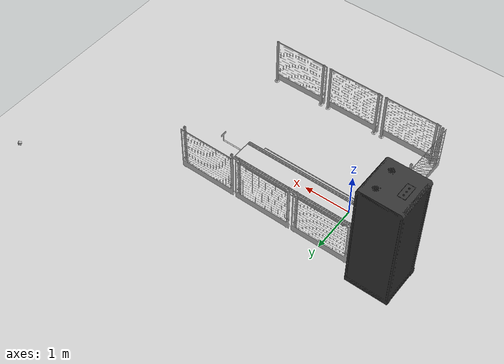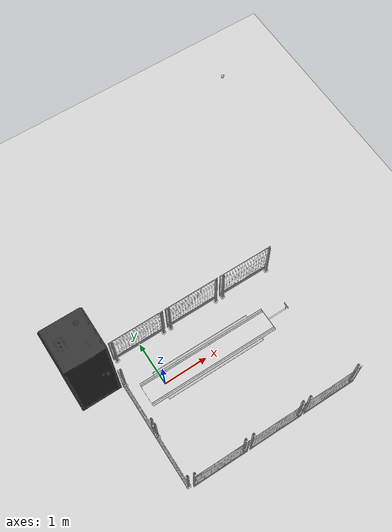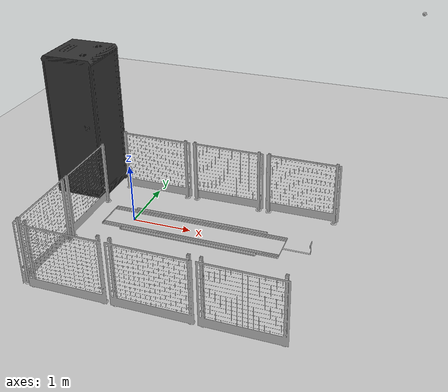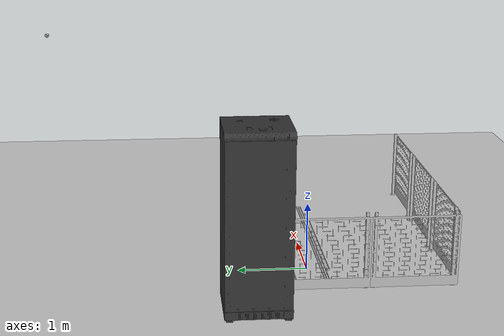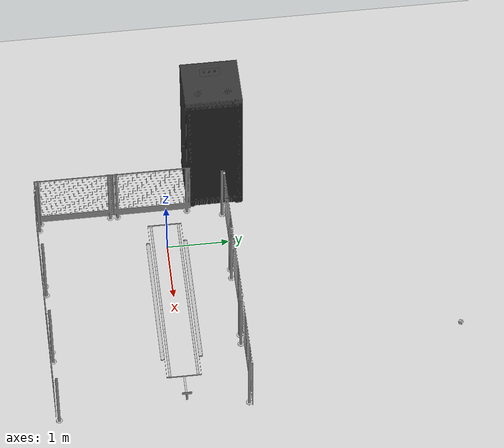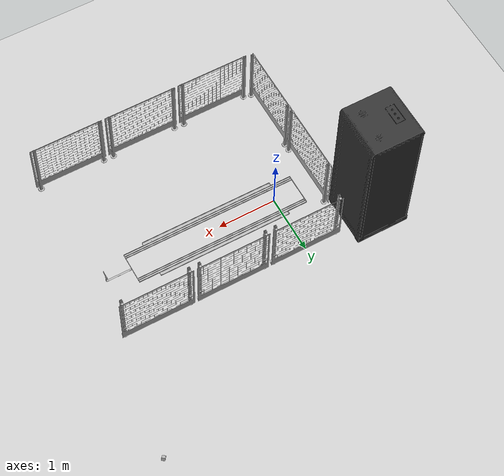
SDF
<sdf version="1.7">
 <world name="default">
  <light name="sun" type="directional">
   <pose>0 0 10 0 -0 0</pose>
   <diffuse>0.8 0.8 0.8 1</diffuse>
   <specular>0.2 0.2 0.2 1</specular>
   <attenuation>
    <range>1000</range>
    <constant>0.9</constant>
    <linear>0.01</linear>
    <quadratic>0.001</quadratic>
   </attenuation>
   <direction>-0.5 0.1 -0.9</direction>
   <spot><inner_angle>0</inner_angle><outer_angle>0</outer_angle><falloff>0</falloff></spot>
  </light>
  <model name="ground_plane">
   <static>1</static>
   <link name="link">
    <collision name="collision">
     <geometry><plane><normal>0 0 1</normal><size>100 100</size></plane></geometry>
     <surface>
      <contact><collide_bitmask>65535</collide_bitmask></contact>
      <friction><ode><mu>100</mu><mu2>50</mu2></ode></friction>
     </surface>
    </collision>
    <visual name="visual">
     <cast_shadows>0</cast_shadows>
     <geometry><plane><normal>0 0 1</normal><size>100 100</size></plane></geometry>
     <material>
      <script><uri>file://media/materials/scripts/gazebo.material</uri><name>Gazebo/Grey</name></script>
     </material>
    </visual>
   </link>
  </model>
  <gravity>0 0 -9.8</gravity>
  <magnetic_field>6e-06 2.3e-05 -4.2e-05</magnetic_field>
  <atmosphere type="adiabatic"/>
  <physics type="ode">
   <max_step_size>0.001</max_step_size>
   <real_time_factor>1</real_time_factor>
   <real_time_update_rate>1000</real_time_update_rate>
  </physics>
  <scene><ambient>0.4 0.4 0.4 1</ambient><background>0.7 0.7 0.7 1</background><shadows>1</shadows></scene>
  <spherical_coordinates>
   <surface_model>EARTH_WGS84</surface_model>
   <latitude_deg>0</latitude_deg>
   <longitude_deg>0</longitude_deg>
   <elevation>0</elevation>
   <heading_deg>0</heading_deg>
  </spherical_coordinates>
  <model name="outside_cam">
   <link name="outside_cam_link">
    <inertial>
     <mass>1</mass>
     <inertia>
      <ixx>0.166667</ixx>
      <ixy>0</ixy>
      <ixz>0</ixz>
      <iyy>0.166667</iyy>
      <iyz>0</iyz>
      <izz>0.166667</izz>
     </inertia>
    </inertial>
    <visual name="visual"><geometry><box><size>0.05 0.05 0.05</size></box></geometry></visual>
    <sensor name="outside_cam" type="camera">
     <update_rate>30</update_rate>
     <camera name="head">
      <horizontal_fov>2.0</horizontal_fov>
      <image><width>800</width><height>800</height><format>R8G8B8</format></image>
      <clip><near>0.02</near><far>300</far></clip>
      <noise><type>gaussian</type><mean>0</mean><stddev>0.007</stddev></noise>
     </camera>
     <plugin name="cam_controller" filename="libgazebo_ros_camera.so">
      <alwaysOn>1</alwaysOn>
      <updateRate>0.0</updateRate>
      <cameraName>outside_cam</cameraName>
      <imageTopicName>image_raw</imageTopicName>
      <cameraInfoTopicName>outside_cam_info</cameraInfoTopicName>
      <frameName>outside_cam_link</frameName>
      <hackBaseline>0.07</hackBaseline>
      <distortionK1>0.0</distortionK1>
      <distortionK2>0.0</distortionK2>
      <distortionK3>0.0</distortionK3>
      <distortionT1>0.0</distortionT1>
      <distortionT2>0.0</distortionT2>
     </plugin>
    </sensor>
   </link>
   <static>1</static>
   <pose>4 4 2.76576 -0 0.407039 -2.23613</pose>
  </model>
  <model name="ifarlab_ray">
   <link name="link_0">
    <inertial>
     <mass>1</mass>
     <inertia>
      <ixx>0.166667</ixx>
      <ixy>0</ixy>
      <ixz>0</ixz>
      <iyy>0.166667</iyy>
      <iyz>0</iyz>
      <izz>0.166667</izz>
     </inertia>
    </inertial>
    <visual name="visual">
     <pose>0.4 -1.28 0 0 -0 0</pose>
     <geometry>
      <mesh><uri>model://ifarlab_ray/model/ifarlab_ray.stl</uri><scale>0.001 0.001 0.001</scale></mesh>
     </geometry>
    </visual>
    <collision name="collision">
     <pose>0.4 -1.28 -0.015 0 -0 0</pose>
     <geometry>
      <mesh><uri>model://ifarlab_ray/model/ifarlab_ray.stl</uri><scale>0.001 0.001 0.001</scale></mesh>
     </geometry>
     <surface>
      <friction>
       <ode><mu>1</mu><mu2>1</mu2><fdir1>0 0 0</fdir1><slip1>0</slip1><slip2>0</slip2></ode>
       <torsional>
        <coefficient>1</coefficient>
        <patch_radius>0</patch_radius>
        <surface_radius>0</surface_radius>
        <use_patch_radius>1</use_patch_radius>
        <ode><slip>0</slip></ode>
       </torsional>
      </friction>
      <bounce><restitution_coefficient>0</restitution_coefficient><threshold>1e+06</threshold></bounce>
      <contact>
       <collide_without_contact>0</collide_without_contact>
       <collide_without_contact_bitmask>1</collide_without_contact_bitmask>
       <collide_bitmask>1</collide_bitmask>
       <ode>
        <soft_cfm>0</soft_cfm>
        <soft_erp>0.2</soft_erp>
        <kp>1e+13</kp>
        <kd>1</kd>
        <max_vel>0.01</max_vel>
        <min_depth>0</min_depth>
       </ode>
       <bullet>
        <split_impulse>1</split_impulse>
        <split_impulse_penetration_threshold>-0.01</split_impulse_penetration_threshold>
        <soft_cfm>0</soft_cfm>
        <soft_erp>0.2</soft_erp>
        <kp>1e+13</kp>
        <kd>1</kd>
       </bullet>
      </contact>
     </surface>
    </collision>
   </link>
   <static>1</static>
   <pose>1.28 5e-06 0 0 -0 1.5708</pose>
  </model>
  <model name="kabinet">
   <link name="link_0">
    <inertial>
     <mass>1</mass>
     <inertia>
      <ixx>0.166667</ixx>
      <ixy>0</ixy>
      <ixz>0</ixz>
      <iyy>0.166667</iyy>
      <iyz>0</iyz>
      <izz>0.166667</izz>
     </inertia>
    </inertial>
    <visual name="visual">
     <pose>0.7 -3.7 0 0 -0 0</pose>
     <geometry>
      <mesh><uri>model://kabinet/model/Kabinet.stl</uri><scale>0.0015 0.0015 0.002</scale></mesh>
     </geometry>
     <material>
      <lighting>1</lighting>
      <ambient>0.2 0.2 0.2 1</ambient>
      <diffuse>0.2 0.2 0.2 1</diffuse>
      <specular>0.1 0.1 0.1 1</specular>
      <emissive>0 0 0 0</emissive>
     </material>
    </visual>
    <collision name="collision">
     <pose>0.7 -3.7 0 0 -0 0</pose>
     <geometry>
      <mesh><uri>model://kabinet/model/Kabinet.stl</uri><scale>0.0015 0.0015 0.002</scale></mesh>
     </geometry>
     <surface>
      <friction>
       <ode><mu>1</mu><mu2>1</mu2><fdir1>0 0 0</fdir1><slip1>0</slip1><slip2>0</slip2></ode>
       <torsional>
        <coefficient>1</coefficient>
        <patch_radius>0</patch_radius>
        <surface_radius>0</surface_radius>
        <use_patch_radius>1</use_patch_radius>
        <ode><slip>0</slip></ode>
       </torsional>
      </friction>
      <bounce><restitution_coefficient>0</restitution_coefficient><threshold>1e+06</threshold></bounce>
      <contact>
       <collide_without_contact>0</collide_without_contact>
       <collide_without_contact_bitmask>1</collide_without_contact_bitmask>
       <collide_bitmask>1</collide_bitmask>
       <ode>
        <soft_cfm>0</soft_cfm>
        <soft_erp>0.2</soft_erp>
        <kp>1e+13</kp>
        <kd>1</kd>
        <max_vel>0.01</max_vel>
        <min_depth>0</min_depth>
       </ode>
       <bullet>
        <split_impulse>1</split_impulse>
        <split_impulse_penetration_threshold>-0.01</split_impulse_penetration_threshold>
        <soft_cfm>0</soft_cfm>
        <soft_erp>0.2</soft_erp>
        <kp>1e+13</kp>
        <kd>1</kd>
       </bullet>
      </contact>
     </surface>
    </collision>
   </link>
   <static>1</static>
   <pose>-1.5969 2.7782 0 0 0 3.1415</pose>
  </model>
  <model name="barrier_0">
   <link name="link_0">
    <inertial>
     <mass>1</mass>
     <inertia>
      <ixx>0.166667</ixx>
      <ixy>0</ixy>
      <ixz>0</ixz>
      <iyy>0.166667</iyy>
      <iyz>0</iyz>
      <izz>0.166667</izz>
     </inertia>
    </inertial>
    <visual name="visual">
     <pose>1.085 0.4 0 0 -0 0</pose>
     <geometry><mesh><uri>model://barrier/model/barrier.stl</uri><scale>0.001 0.001 0.001</scale></mesh></geometry>
    </visual>
    <collision name="collision">
     <pose>1.085 0.4 0 0 -0 0</pose>
     <geometry><mesh><uri>model://barrier/model/barrier.stl</uri><scale>0.001 0.001 0.001</scale></mesh></geometry>
     <surface>
      <friction>
       <ode><mu>1</mu><mu2>1</mu2><fdir1>0 0 0</fdir1><slip1>0</slip1><slip2>0</slip2></ode>
       <torsional>
        <coefficient>1</coefficient>
        <patch_radius>0</patch_radius>
        <surface_radius>0</surface_radius>
        <use_patch_radius>1</use_patch_radius>
        <ode><slip>0</slip></ode>
       </torsional>
      </friction>
      <bounce><restitution_coefficient>0</restitution_coefficient><threshold>1e+06</threshold></bounce>
      <contact>
       <collide_without_contact>0</collide_without_contact>
       <collide_without_contact_bitmask>1</collide_without_contact_bitmask>
       <collide_bitmask>1</collide_bitmask>
       <ode>
        <soft_cfm>0</soft_cfm>
        <soft_erp>0.2</soft_erp>
        <kp>1e+13</kp>
        <kd>1</kd>
        <max_vel>0.01</max_vel>
        <min_depth>0</min_depth>
       </ode>
       <bullet>
        <split_impulse>1</split_impulse>
        <split_impulse_penetration_threshold>-0.01</split_impulse_penetration_threshold>
        <soft_cfm>0</soft_cfm>
        <soft_erp>0.2</soft_erp>
        <kp>1e+13</kp>
        <kd>1</kd>
       </bullet>
      </contact>
     </surface>
    </collision>
   </link>
   <static>1</static>
   <pose>-0.690002 -1.41316 0 0 0 -1.5708</pose>
  </model>
  <model name="barrier_2">
   <link name="link_0">
    <inertial>
     <mass>1</mass>
     <inertia>
      <ixx>0.166667</ixx>
      <ixy>0</ixy>
      <ixz>0</ixz>
      <iyy>0.166667</iyy>
      <iyz>0</iyz>
      <izz>0.166667</izz>
     </inertia>
    </inertial>
    <visual name="visual">
     <pose>1.085 0.4 0 0 -0 0</pose>
     <geometry><mesh><uri>model://barrier/model/barrier.stl</uri><scale>0.001 0.001 0.001</scale></mesh></geometry>
    </visual>
    <collision name="collision">
     <pose>1.085 0.4 0 0 -0 0</pose>
     <geometry><mesh><uri>model://barrier/model/barrier.stl</uri><scale>0.001 0.001 0.001</scale></mesh></geometry>
     <surface>
      <friction>
       <ode><mu>1</mu><mu2>1</mu2><fdir1>0 0 0</fdir1><slip1>0</slip1><slip2>0</slip2></ode>
       <torsional>
        <coefficient>1</coefficient>
        <patch_radius>0</patch_radius>
        <surface_radius>0</surface_radius>
        <use_patch_radius>1</use_patch_radius>
        <ode><slip>0</slip></ode>
       </torsional>
      </friction>
      <bounce><restitution_coefficient>0</restitution_coefficient><threshold>1e+06</threshold></bounce>
      <contact>
       <collide_without_contact>0</collide_without_contact>
       <collide_without_contact_bitmask>1</collide_without_contact_bitmask>
       <collide_bitmask>1</collide_bitmask>
       <ode>
        <soft_cfm>0</soft_cfm>
        <soft_erp>0.2</soft_erp>
        <kp>1e+13</kp>
        <kd>1</kd>
        <max_vel>0.01</max_vel>
        <min_depth>0</min_depth>
       </ode>
       <bullet>
        <split_impulse>1</split_impulse>
        <split_impulse_penetration_threshold>-0.01</split_impulse_penetration_threshold>
        <soft_cfm>0</soft_cfm>
        <soft_erp>0.2</soft_erp>
        <kp>1e+13</kp>
        <kd>1</kd>
       </bullet>
      </contact>
     </surface>
    </collision>
   </link>
   <static>1</static>
   <pose>-0.690002 -0.168014 0 0 0 -1.5708</pose>
  </model>
  <model name="barrier_3">
   <link name="link_0">
    <inertial>
     <mass>1</mass>
     <inertia>
      <ixx>0.166667</ixx>
      <ixy>0</ixy>
      <ixz>0</ixz>
      <iyy>0.166667</iyy>
      <iyz>0</iyz>
      <izz>0.166667</izz>
     </inertia>
    </inertial>
    <visual name="visual">
     <pose>1.085 0.4 0 0 -0 0</pose>
     <geometry><mesh><uri>model://barrier/model/barrier.stl</uri><scale>0.001 0.001 0.001</scale></mesh></geometry>
    </visual>
    <collision name="collision">
     <pose>1.085 0.4 0 0 -0 0</pose>
     <geometry><mesh><uri>model://barrier/model/barrier.stl</uri><scale>0.001 0.001 0.001</scale></mesh></geometry>
     <surface>
      <friction>
       <ode><mu>1</mu><mu2>1</mu2><fdir1>0 0 0</fdir1><slip1>0</slip1><slip2>0</slip2></ode>
       <torsional>
        <coefficient>1</coefficient>
        <patch_radius>0</patch_radius>
        <surface_radius>0</surface_radius>
        <use_patch_radius>1</use_patch_radius>
        <ode><slip>0</slip></ode>
       </torsional>
      </friction>
      <bounce><restitution_coefficient>0</restitution_coefficient><threshold>1e+06</threshold></bounce>
      <contact>
       <collide_without_contact>0</collide_without_contact>
       <collide_without_contact_bitmask>1</collide_without_contact_bitmask>
       <collide_bitmask>1</collide_bitmask>
       <ode>
        <soft_cfm>0</soft_cfm>
        <soft_erp>0.2</soft_erp>
        <kp>1e+13</kp>
        <kd>1</kd>
        <max_vel>0.01</max_vel>
        <min_depth>0</min_depth>
       </ode>
       <bullet>
        <split_impulse>1</split_impulse>
        <split_impulse_penetration_threshold>-0.01</split_impulse_penetration_threshold>
        <soft_cfm>0</soft_cfm>
        <soft_erp>0.2</soft_erp>
        <kp>1e+13</kp>
        <kd>1</kd>
       </bullet>
      </contact>
     </surface>
    </collision>
   </link>
   <static>1</static>
   <pose>2.6 0.95 0 0 -0 3.14159</pose>
  </model>
  <model name="barrier_3_clone">
   <link name="link_0">
    <inertial>
     <mass>1</mass>
     <inertia>
      <ixx>0.166667</ixx>
      <ixy>0</ixy>
      <ixz>0</ixz>
      <iyy>0.166667</iyy>
      <iyz>0</iyz>
      <izz>0.166667</izz>
     </inertia>
    </inertial>
    <visual name="visual">
     <pose>1.085 0.4 0 0 -0 0</pose>
     <geometry><mesh><uri>model://barrier/model/barrier.stl</uri><scale>0.001 0.001 0.001</scale></mesh></geometry>
    </visual>
    <collision name="collision">
     <pose>1.085 0.4 0 0 -0 0</pose>
     <geometry><mesh><uri>model://barrier/model/barrier.stl</uri><scale>0.001 0.001 0.001</scale></mesh></geometry>
     <surface>
      <friction>
       <ode><mu>1</mu><mu2>1</mu2><fdir1>0 0 0</fdir1><slip1>0</slip1><slip2>0</slip2></ode>
       <torsional>
        <coefficient>1</coefficient>
        <patch_radius>0</patch_radius>
        <surface_radius>0</surface_radius>
        <use_patch_radius>1</use_patch_radius>
        <ode><slip>0</slip></ode>
       </torsional>
      </friction>
      <bounce><restitution_coefficient>0</restitution_coefficient><threshold>1e+06</threshold></bounce>
      <contact>
       <collide_without_contact>0</collide_without_contact>
       <collide_without_contact_bitmask>1</collide_without_contact_bitmask>
       <collide_bitmask>1</collide_bitmask>
       <ode>
        <soft_cfm>0</soft_cfm>
        <soft_erp>0.2</soft_erp>
        <kp>1e+13</kp>
        <kd>1</kd>
        <max_vel>0.01</max_vel>
        <min_depth>0</min_depth>
       </ode>
       <bullet>
        <split_impulse>1</split_impulse>
        <split_impulse_penetration_threshold>-0.01</split_impulse_penetration_threshold>
        <soft_cfm>0</soft_cfm>
        <soft_erp>0.2</soft_erp>
        <kp>1e+13</kp>
        <kd>1</kd>
       </bullet>
      </contact>
     </surface>
    </collision>
   </link>
   <static>1</static>
   <pose>1.3 0.950001 0 0 -0 3.14159</pose>
  </model>
  <model name="barrier_3_clone_0">
   <link name="link_0">
    <inertial>
     <mass>1</mass>
     <inertia>
      <ixx>0.166667</ixx>
      <ixy>0</ixy>
      <ixz>0</ixz>
      <iyy>0.166667</iyy>
      <iyz>0</iyz>
      <izz>0.166667</izz>
     </inertia>
    </inertial>
    <visual name="visual">
     <pose>1.085 0.4 0 0 -0 0</pose>
     <geometry><mesh><uri>model://barrier/model/barrier.stl</uri><scale>0.001 0.001 0.001</scale></mesh></geometry>
    </visual>
    <collision name="collision">
     <pose>1.085 0.4 0 0 -0 0</pose>
     <geometry><mesh><uri>model://barrier/model/barrier.stl</uri><scale>0.001 0.001 0.001</scale></mesh></geometry>
     <surface>
      <friction>
       <ode><mu>1</mu><mu2>1</mu2><fdir1>0 0 0</fdir1><slip1>0</slip1><slip2>0</slip2></ode>
       <torsional>
        <coefficient>1</coefficient>
        <patch_radius>0</patch_radius>
        <surface_radius>0</surface_radius>
        <use_patch_radius>1</use_patch_radius>
        <ode><slip>0</slip></ode>
       </torsional>
      </friction>
      <bounce><restitution_coefficient>0</restitution_coefficient><threshold>1e+06</threshold></bounce>
      <contact>
       <collide_without_contact>0</collide_without_contact>
       <collide_without_contact_bitmask>1</collide_without_contact_bitmask>
       <collide_bitmask>1</collide_bitmask>
       <ode>
        <soft_cfm>0</soft_cfm>
        <soft_erp>0.2</soft_erp>
        <kp>1e+13</kp>
        <kd>1</kd>
        <max_vel>0.01</max_vel>
        <min_depth>0</min_depth>
       </ode>
       <bullet>
        <split_impulse>1</split_impulse>
        <split_impulse_penetration_threshold>-0.01</split_impulse_penetration_threshold>
        <soft_cfm>0</soft_cfm>
        <soft_erp>0.2</soft_erp>
        <kp>1e+13</kp>
        <kd>1</kd>
       </bullet>
      </contact>
     </surface>
    </collision>
   </link>
   <static>1</static>
   <pose>0 0.947471 0 0 -0 3.14158</pose>
  </model>
  <model name="barrier_4">
   <link name="link_0">
    <inertial>
     <mass>1</mass>
     <inertia>
      <ixx>0.166667</ixx>
      <ixy>0</ixy>
      <ixz>0</ixz>
      <iyy>0.166667</iyy>
      <iyz>0</iyz>
      <izz>0.166667</izz>
     </inertia>
    </inertial>
    <visual name="visual">
     <pose>1.085 0.4 0 0 -0 0</pose>
     <geometry><mesh><uri>model://barrier/model/barrier.stl</uri><scale>0.001 0.001 0.001</scale></mesh></geometry>
    </visual>
    <collision name="collision">
     <pose>1.085 0.4 0 0 -0 0</pose>
     <geometry><mesh><uri>model://barrier/model/barrier.stl</uri><scale>0.001 0.001 0.001</scale></mesh></geometry>
     <surface>
      <friction>
       <ode><mu>1</mu><mu2>1</mu2><fdir1>0 0 0</fdir1><slip1>0</slip1><slip2>0</slip2></ode>
       <torsional>
        <coefficient>1</coefficient>
        <patch_radius>0</patch_radius>
        <surface_radius>0</surface_radius>
        <use_patch_radius>1</use_patch_radius>
        <ode><slip>0</slip></ode>
       </torsional>
      </friction>
      <bounce><restitution_coefficient>0</restitution_coefficient><threshold>1e+06</threshold></bounce>
      <contact>
       <collide_without_contact>0</collide_without_contact>
       <collide_without_contact_bitmask>1</collide_without_contact_bitmask>
       <collide_bitmask>1</collide_bitmask>
       <ode>
        <soft_cfm>0</soft_cfm>
        <soft_erp>0.2</soft_erp>
        <kp>1e+13</kp>
        <kd>1</kd>
        <max_vel>0.01</max_vel>
        <min_depth>0</min_depth>
       </ode>
       <bullet>
        <split_impulse>1</split_impulse>
        <split_impulse_penetration_threshold>-0.01</split_impulse_penetration_threshold>
        <soft_cfm>0</soft_cfm>
        <soft_erp>0.2</soft_erp>
        <kp>1e+13</kp>
        <kd>1</kd>
       </bullet>
      </contact>
     </surface>
    </collision>
   </link>
   <static>1</static>
   <pose>0 -2 0 0 -0 0</pose>
  </model>
  <model name="barrier_4_clone">
   <link name="link_0">
    <inertial>
     <mass>1</mass>
     <inertia>
      <ixx>0.166667</ixx>
      <ixy>0</ixy>
      <ixz>0</ixz>
      <iyy>0.166667</iyy>
      <iyz>0</iyz>
      <izz>0.166667</izz>
     </inertia>
    </inertial>
    <visual name="visual">
     <pose>1.085 0.4 0 0 -0 0</pose>
     <geometry><mesh><uri>model://barrier/model/barrier.stl</uri><scale>0.001 0.001 0.001</scale></mesh></geometry>
    </visual>
    <collision name="collision">
     <pose>1.085 0.4 0 0 -0 0</pose>
     <geometry><mesh><uri>model://barrier/model/barrier.stl</uri><scale>0.001 0.001 0.001</scale></mesh></geometry>
     <surface>
      <friction>
       <ode><mu>1</mu><mu2>1</mu2><fdir1>0 0 0</fdir1><slip1>0</slip1><slip2>0</slip2></ode>
       <torsional>
        <coefficient>1</coefficient>
        <patch_radius>0</patch_radius>
        <surface_radius>0</surface_radius>
        <use_patch_radius>1</use_patch_radius>
        <ode><slip>0</slip></ode>
       </torsional>
      </friction>
      <bounce><restitution_coefficient>0</restitution_coefficient><threshold>1e+06</threshold></bounce>
      <contact>
       <collide_without_contact>0</collide_without_contact>
       <collide_without_contact_bitmask>1</collide_without_contact_bitmask>
       <collide_bitmask>1</collide_bitmask>
       <ode>
        <soft_cfm>0</soft_cfm>
        <soft_erp>0.2</soft_erp>
        <kp>1e+13</kp>
        <kd>1</kd>
        <max_vel>0.01</max_vel>
        <min_depth>0</min_depth>
       </ode>
       <bullet>
        <split_impulse>1</split_impulse>
        <split_impulse_penetration_threshold>-0.01</split_impulse_penetration_threshold>
        <soft_cfm>0</soft_cfm>
        <soft_erp>0.2</soft_erp>
        <kp>1e+13</kp>
        <kd>1</kd>
       </bullet>
      </contact>
     </surface>
    </collision>
   </link>
   <static>1</static>
   <pose>1.3 -2 0 0 -0 0</pose>
  </model>
  <model name="barrier_4_clone_0">
   <link name="link_0">
    <inertial>
     <mass>1</mass>
     <inertia>
      <ixx>0.166667</ixx>
      <ixy>0</ixy>
      <ixz>0</ixz>
      <iyy>0.166667</iyy>
      <iyz>0</iyz>
      <izz>0.166667</izz>
     </inertia>
    </inertial>
    <visual name="visual">
     <pose>1.085 0.4 0 0 -0 0</pose>
     <geometry><mesh><uri>model://barrier/model/barrier.stl</uri><scale>0.001 0.001 0.001</scale></mesh></geometry>
    </visual>
    <collision name="collision">
     <pose>1.085 0.4 0 0 -0 0</pose>
     <geometry><mesh><uri>model://barrier/model/barrier.stl</uri><scale>0.001 0.001 0.001</scale></mesh></geometry>
     <surface>
      <friction>
       <ode><mu>1</mu><mu2>1</mu2><fdir1>0 0 0</fdir1><slip1>0</slip1><slip2>0</slip2></ode>
       <torsional>
        <coefficient>1</coefficient>
        <patch_radius>0</patch_radius>
        <surface_radius>0</surface_radius>
        <use_patch_radius>1</use_patch_radius>
        <ode><slip>0</slip></ode>
       </torsional>
      </friction>
      <bounce><restitution_coefficient>0</restitution_coefficient><threshold>1e+06</threshold></bounce>
      <contact>
       <collide_without_contact>0</collide_without_contact>
       <collide_without_contact_bitmask>1</collide_without_contact_bitmask>
       <collide_bitmask>1</collide_bitmask>
       <ode>
        <soft_cfm>0</soft_cfm>
        <soft_erp>0.2</soft_erp>
        <kp>1e+13</kp>
        <kd>1</kd>
        <max_vel>0.01</max_vel>
        <min_depth>0</min_depth>
       </ode>
       <bullet>
        <split_impulse>1</split_impulse>
        <split_impulse_penetration_threshold>-0.01</split_impulse_penetration_threshold>
        <soft_cfm>0</soft_cfm>
        <soft_erp>0.2</soft_erp>
        <kp>1e+13</kp>
        <kd>1</kd>
       </bullet>
      </contact>
     </surface>
    </collision>
   </link>
   <static>1</static>
   <pose>2.6 -2 0 0 -0 0</pose>
  </model>
 </world>
</sdf>
